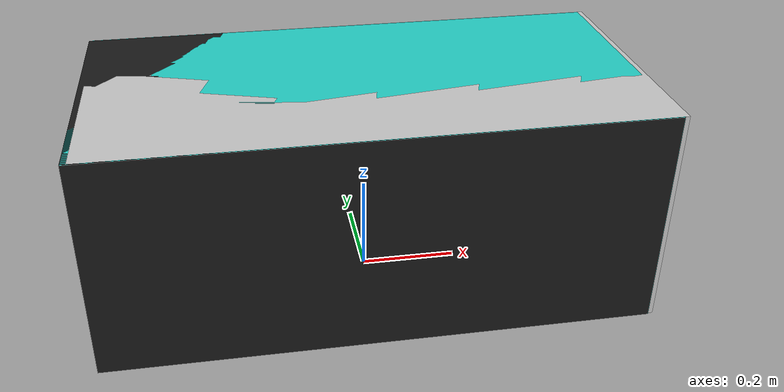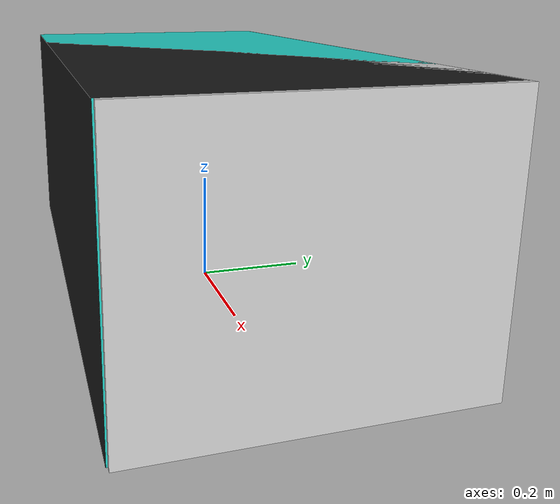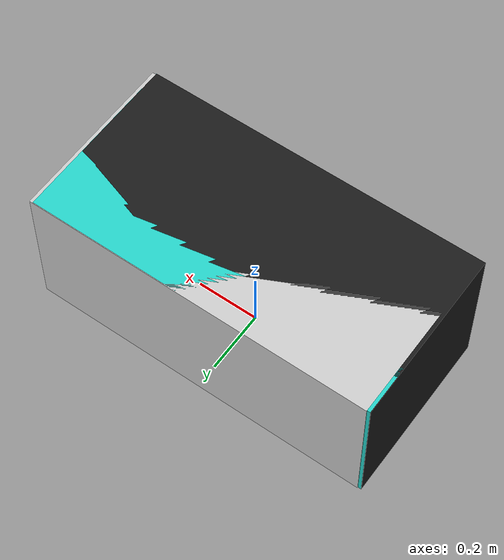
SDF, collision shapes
<?xml version='1.0' encoding='utf-8'?>
<sdf version="1.6">
  <model name="coffee_table_1">
    <link name="link_19">
      <pose frame="">0.006984 0.00176 0 0 -0 0</pose>

      <visual name="visual">
        <pose frame="">0 0 0 0 -0 0</pose>
        <geometry>
          <mesh>
            <uri>model://coffee_table_1/meshes/base.dae</uri>
            <scale>1 1 1</scale>
          </mesh>
        </geometry>
        <material>
          <lighting>1</lighting>
            <ambient>1 1 1 1</ambient>
          <diffuse>0.8 0.8 0.8 1</diffuse>
          <specular>0.01 0.01 0.01 1</specular>
          <emissive>0 0 0 1</emissive>
        </material>
        <cast_shadows>1</cast_shadows>
        <transparency>0</transparency>
      </visual>
      <collision name="collision">
        <laser_retro>0</laser_retro>
        <max_contacts>10</max_contacts>
        <pose frame="">0 0 0.2250 0 0 0</pose>
        <geometry>
          <box><size>1.1 0.55 0.45</size></box></geometry>
         </collision>
    </link>
    <link name="link_20">
      <pose frame="">-0.003909 -0.001257 0 0 -0 0</pose>
         <visual name="visual">
        <pose frame="">0 0 0 0 -0 0</pose>
        <geometry>
          <mesh>
            <uri>model://coffee_table_1/meshes/mesh.dae</uri>
            <scale>1 1 1</scale>
          </mesh>
        </geometry>
        <material>
          <lighting>1</lighting>
          <ambient>0.1 0.1 0.1 1</ambient>
          <diffuse>0.1 0.1 0.1 1</diffuse>
          <specular>0.01 0.01 0.01 1</specular>
          <emissive>0 0 0 1</emissive>
        </material>
        <cast_shadows>1</cast_shadows>
        <transparency>0</transparency>
      </visual>
      <collision name="collision">
        <laser_retro>0</laser_retro>
        <max_contacts>10</max_contacts>
        <pose frame="">0 0 0.2250 0 0 0</pose>
        <geometry>
          <box><size>1.1 0.55 0.45</size></box></geometry>
        </collision>
    </link>
    <link name="link_22">
      <pose frame="">-0.003075 -0.000504 0 0 -0 0</pose>
       <visual name="visual">
        <pose frame="">0 0 0 0 -0 0</pose>
        <geometry>
          <mesh>
            <uri>model://coffee_table_1/meshes/glass.dae</uri>
            <scale>1 1 1</scale>
          </mesh>
        </geometry>
        <material>
          <lighting>1</lighting>
            <ambient>0.145 0.831 0.792 1</ambient>
          <diffuse>0.145 0.831 0.792 1</diffuse>
          <specular>0.01 0.01 0.01 1</specular>
          <emissive>0 0 0 1</emissive>
        </material>
        <cast_shadows>1</cast_shadows>
        <transparency>0.7</transparency>
      </visual>
      <collision name="collision">
        <laser_retro>0</laser_retro>
        <max_contacts>10</max_contacts>
        <pose frame="">0 0 0.2250 0 0 0</pose>
        <geometry>
          <box><size>1.1 0.55 0.45</size></box></geometry>
        </collision>
    </link>
    <static>1</static>
    <allow_auto_disable>1</allow_auto_disable>
  </model>
</sdf>
